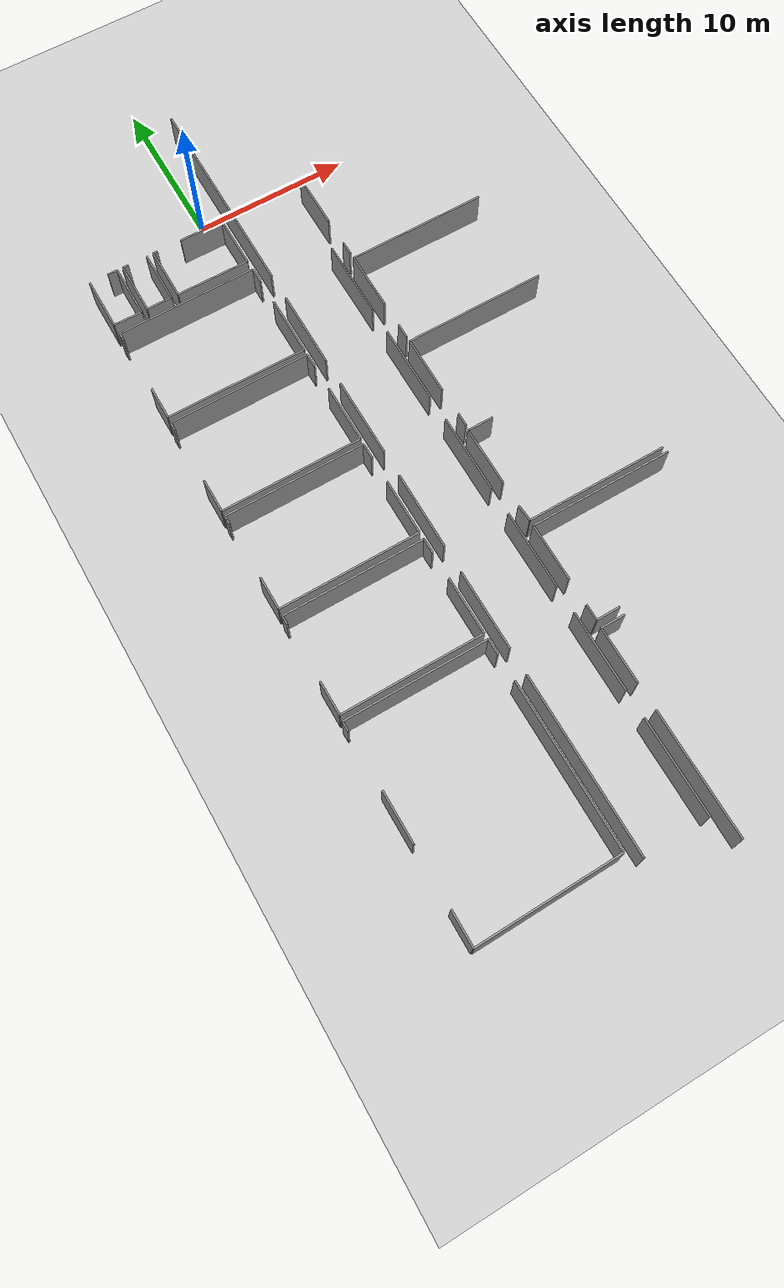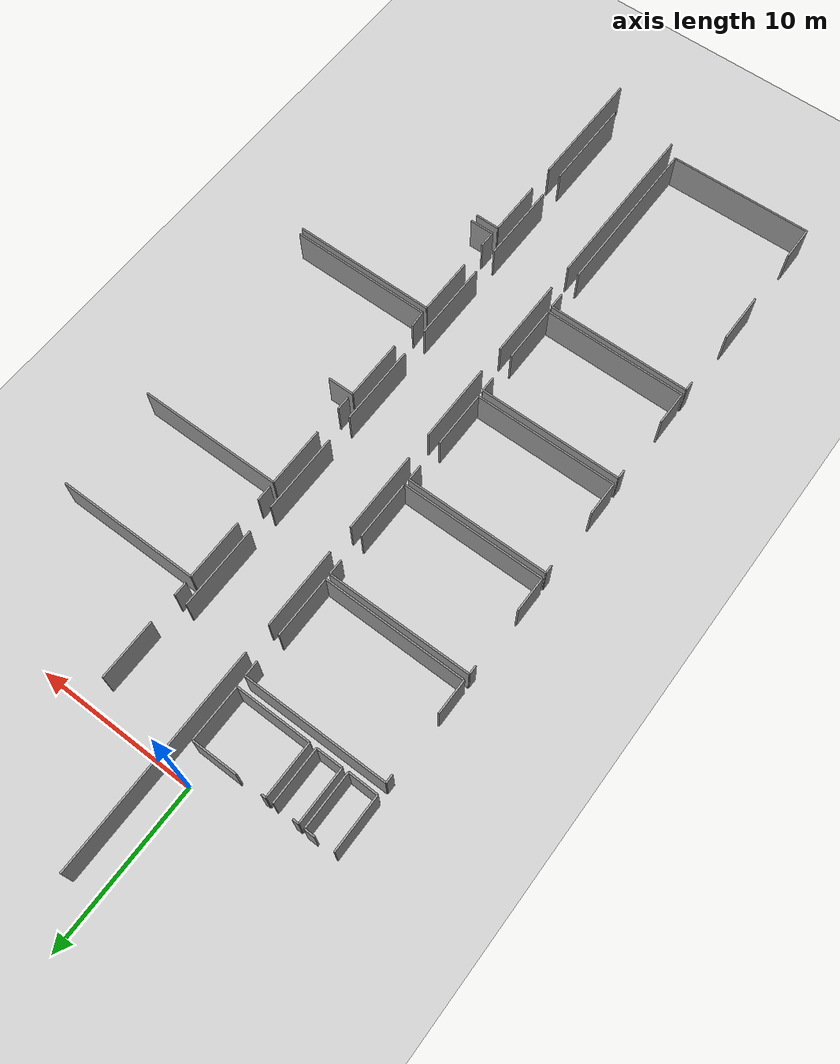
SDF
<sdf version="1.6">
 <world name="default">
  <model name="ground_plane">
   <static>1</static>
   <link name="link">
    <collision name="collision">
     <geometry><plane><normal>0 0 1</normal><size>100 100</size></plane></geometry>
     <surface><friction><ode><mu>100</mu><mu2>50</mu2></ode></friction></surface>
    </collision>
    <visual name="visual">
     <cast_shadows>0</cast_shadows>
     <geometry><plane><normal>0 0 1</normal><size>100 100</size></plane></geometry>
     <material>
      <script><uri>file://media/materials/scripts/gazebo.material</uri><name>Gazebo/Grey</name></script>
     </material>
    </visual>
   </link>
  </model>
  <model name="0510035741_A_40_1_104">
   <static>1</static>
   <link name="Wall_330">
    <collision name="Wall_330_Collision">
     <geometry><box><size>11.21379722 0.1 2.5</size></box></geometry>
     <pose>5.60689860999 0 1.25 0 0 0</pose>
    </collision>
    <visual name="Wall_330_Visual">
     <pose>5.60689860999 0 1.25 0 0 0</pose>
     <geometry><box><size>11.21379722 0.1 2.5</size></box></geometry>
     <material>
      <script><uri>file://media/materials/scripts/gazebo.material</uri><name>Gazebo/Grey</name></script>
      <ambient>1 1 1 1</ambient>
     </material>
    </visual>
    <pose>95.5269524578 -96.6239736857 0 0 0 1.57079632679</pose>
   </link>
   <link name="Wall_331">
    <collision name="Wall_331_Collision">
     <geometry><box><size>5.1264596999 0.1 2.5</size></box></geometry>
     <pose>2.56322984995 0 1.25 0 0 0</pose>
    </collision>
    <visual name="Wall_331_Visual">
     <pose>2.56322984995 0 1.25 0 0 0</pose>
     <geometry><box><size>5.1264596999 0.1 2.5</size></box></geometry>
     <material>
      <script><uri>file://media/materials/scripts/gazebo.material</uri><name>Gazebo/Grey</name></script>
      <ambient>1 1 1 1</ambient>
     </material>
    </visual>
    <pose>95.5269524578 -83.7548656663 0 0 0 1.57079632679</pose>
   </link>
   <link name="Wall_332">
    <collision name="Wall_332_Collision">
     <geometry><box><size>5.02689213302 0.1 2.5</size></box></geometry>
     <pose>2.51344606651 0 1.25 0 0 0</pose>
    </collision>
    <visual name="Wall_332_Visual">
     <pose>2.51344606651 0 1.25 0 0 0</pose>
     <geometry><box><size>5.02689213302 0.1 2.5</size></box></geometry>
     <material>
      <script><uri>file://media/materials/scripts/gazebo.material</uri><name>Gazebo/Grey</name></script>
      <ambient>1 1 1 1</ambient>
     </material>
    </visual>
    <pose>95.5269524578 -76.8725116046 0 0 0 1.57079632679</pose>
   </link>
   <link name="Wall_333">
    <collision name="Wall_333_Collision">
     <geometry><box><size>5.14373162477 0.1 2.5</size></box></geometry>
     <pose>2.57186581238 0 1.25 0 0 0</pose>
    </collision>
    <visual name="Wall_333_Visual">
     <pose>2.57186581238 0 1.25 0 0 0</pose>
     <geometry><box><size>5.14373162477 0.1 2.5</size></box></geometry>
     <material>
      <script><uri>file://media/materials/scripts/gazebo.material</uri><name>Gazebo/Grey</name></script>
      <ambient>1 1 1 1</ambient>
     </material>
    </visual>
    <pose>95.5269524578 -70.1420488821 0 0 0 1.57079632679</pose>
   </link>
   <link name="Wall_334">
    <collision name="Wall_334_Collision">
     <geometry><box><size>5.05787999822 0.1 2.5</size></box></geometry>
     <pose>2.52893999911 0 1.25 0 0 0</pose>
    </collision>
    <visual name="Wall_334_Visual">
     <pose>2.52893999911 0 1.25 0 0 0</pose>
     <geometry><box><size>5.05787999822 0.1 2.5</size></box></geometry>
     <material>
      <script><uri>file://media/materials/scripts/gazebo.material</uri><name>Gazebo/Grey</name></script>
      <ambient>1 1 1 1</ambient>
     </material>
    </visual>
    <pose>95.5269524578 -63.2779827408 0 0 0 1.57079632679</pose>
   </link>
   <link name="Wall_335">
    <collision name="Wall_335_Collision">
     <geometry><box><size>13.6443126472 0.1 2.5</size></box></geometry>
     <pose>6.82215632362 0 1.25 0 0 0</pose>
    </collision>
    <visual name="Wall_335_Visual">
     <pose>6.82215632362 0 1.25 0 0 0</pose>
     <geometry><box><size>13.6443126472 0.1 2.5</size></box></geometry>
     <material>
      <script><uri>file://media/materials/scripts/gazebo.material</uri><name>Gazebo/Grey</name></script>
      <ambient>1 1 1 1</ambient>
     </material>
    </visual>
    <pose>95.5269524578 -56.4311885243 0 0 0 1.57079632679</pose>
   </link>
   <link name="Wall_338">
    <collision name="Wall_338_Collision">
     <geometry><box><size>5.13077768112 0.1 2.5</size></box></geometry>
     <pose>2.56538884056 0 1.25 0 0 0</pose>
    </collision>
    <visual name="Wall_338_Visual">
     <pose>2.56538884056 0 1.25 0 0 0</pose>
     <geometry><box><size>5.13077768112 0.1 2.5</size></box></geometry>
     <material>
      <script><uri>file://media/materials/scripts/gazebo.material</uri><name>Gazebo/Grey</name></script>
      <ambient>1 1 1 1</ambient>
     </material>
    </visual>
    <pose>99.6620544701 -56.5205961354 0 0 0 -1.57079632679</pose>
   </link>
   <link name="Wall_339">
    <collision name="Wall_339_Collision">
     <geometry><box><size>5.02917812308 0.1 2.5</size></box></geometry>
     <pose>2.51458906154 0 1.25 0 0 0</pose>
    </collision>
    <visual name="Wall_339_Visual">
     <pose>2.51458906154 0 1.25 0 0 0</pose>
     <geometry><box><size>5.02917812308 0.1 2.5</size></box></geometry>
     <material>
      <script><uri>file://media/materials/scripts/gazebo.material</uri><name>Gazebo/Grey</name></script>
      <ambient>1 1 1 1</ambient>
     </material>
    </visual>
    <pose>99.6620544701 -63.3531664137 0 0 0 -1.57079632679</pose>
   </link>
   <link name="Wall_340">
    <collision name="Wall_340_Collision">
     <geometry><box><size>5.0799779021 0.1 2.5</size></box></geometry>
     <pose>2.53998895105 0 1.25 0 0 0</pose>
    </collision>
    <visual name="Wall_340_Visual">
     <pose>2.53998895105 0 1.25 0 0 0</pose>
     <geometry><box><size>5.0799779021 0.1 2.5</size></box></geometry>
     <material>
      <script><uri>file://media/materials/scripts/gazebo.material</uri><name>Gazebo/Grey</name></script>
      <ambient>1 1 1 1</ambient>
     </material>
    </visual>
    <pose>99.6620544701 -70.1095370235 0 0 0 -1.57079632679</pose>
   </link>
   <link name="Wall_341">
    <collision name="Wall_341_Collision">
     <geometry><box><size>5.05787999822 0.1 2.5</size></box></geometry>
     <pose>2.52893999911 0 1.25 0 0 0</pose>
    </collision>
    <visual name="Wall_341_Visual">
     <pose>2.52893999911 0 1.25 0 0 0</pose>
     <geometry><box><size>5.05787999822 0.1 2.5</size></box></geometry>
     <material>
      <script><uri>file://media/materials/scripts/gazebo.material</uri><name>Gazebo/Grey</name></script>
      <ambient>1 1 1 1</ambient>
     </material>
    </visual>
    <pose>99.6620544701 -76.9718251726 0 0 0 -1.57079632679</pose>
   </link>
   <link name="Wall_342">
    <collision name="Wall_342_Collision">
     <geometry><box><size>5.07337393082 0.1 2.5</size></box></geometry>
     <pose>2.53668696541 0 1.25 0 0 0</pose>
    </collision>
    <visual name="Wall_342_Visual">
     <pose>2.53668696541 0 1.25 0 0 0</pose>
     <geometry><box><size>5.07337393082 0.1 2.5</size></box></geometry>
     <material>
      <script><uri>file://media/materials/scripts/gazebo.material</uri><name>Gazebo/Grey</name></script>
      <ambient>1 1 1 1</ambient>
     </material>
    </visual>
    <pose>99.6620544701 -83.7746775802 0 0 0 -1.57079632679</pose>
   </link>
   <link name="Wall_343">
    <collision name="Wall_343_Collision">
     <geometry><box><size>6.04949168471 0.1 2.5</size></box></geometry>
     <pose>3.02474584236 0 1.25 0 0 0</pose>
    </collision>
    <visual name="Wall_343_Visual">
     <pose>3.02474584236 0 1.25 0 0 0</pose>
     <geometry><box><size>6.04949168471 0.1 2.5</size></box></geometry>
     <material>
      <script><uri>file://media/materials/scripts/gazebo.material</uri><name>Gazebo/Grey</name></script>
      <ambient>1 1 1 1</ambient>
     </material>
    </visual>
    <pose>99.6620544701 -90.5564480795 0 0 0 -1.57079632679</pose>
   </link>
   <link name="Wall_344">
    <collision name="Wall_344_Collision">
     <geometry><box><size>3.38377328059 0.1 2.5</size></box></geometry>
     <pose>1.69188664029 0 1.25 0 0 0</pose>
    </collision>
    <visual name="Wall_344_Visual">
     <pose>1.69188664029 0 1.25 0 0 0</pose>
     <geometry><box><size>3.38377328059 0.1 2.5</size></box></geometry>
     <material>
      <script><uri>file://media/materials/scripts/gazebo.material</uri><name>Gazebo/Grey</name></script>
      <ambient>1 1 1 1</ambient>
     </material>
    </visual>
    <pose>90.0052704771 -54.7680037592 0 0 0 1.57079632679</pose>
   </link>
   <link name="Wall_345">
    <collision name="Wall_345_Collision">
     <geometry><box><size>0.290320737105 0.1 2.5</size></box></geometry>
     <pose>0.145160368552 0 1.25 0 0 0</pose>
    </collision>
    <visual name="Wall_345_Visual">
     <pose>0.145160368552 0 1.25 0 0 0</pose>
     <geometry><box><size>0.290320737105 0.1 2.5</size></box></geometry>
     <material>
      <script><uri>file://media/materials/scripts/gazebo.material</uri><name>Gazebo/Grey</name></script>
      <ambient>1 1 1 1</ambient>
     </material>
    </visual>
    <pose>90.0052704771 -51.3842304786 0 0 0 0.0</pose>
   </link>
   <link name="Wall_346">
    <collision name="Wall_346_Collision">
     <geometry><box><size>2.84656561744 0.1 2.5</size></box></geometry>
     <pose>1.42328280872 0 1.25 0 0 0</pose>
    </collision>
    <visual name="Wall_346_Visual">
     <pose>1.42328280872 0 1.25 0 0 0</pose>
     <geometry><box><size>2.84656561744 0.1 2.5</size></box></geometry>
     <material>
      <script><uri>file://media/materials/scripts/gazebo.material</uri><name>Gazebo/Grey</name></script>
      <ambient>1 1 1 1</ambient>
     </material>
    </visual>
    <pose>91.8785123285 -51.3842304786 0 0 0 0.0</pose>
   </link>
   <link name="Wall_347">
    <collision name="Wall_347_Collision">
     <geometry><box><size>3.39825121761 0.1 2.5</size></box></geometry>
     <pose>1.6991256088 0 1.25 0 0 0</pose>
    </collision>
    <visual name="Wall_347_Visual">
     <pose>1.6991256088 0 1.25 0 0 0</pose>
     <geometry><box><size>3.39825121761 0.1 2.5</size></box></geometry>
     <material>
      <script><uri>file://media/materials/scripts/gazebo.material</uri><name>Gazebo/Grey</name></script>
      <ambient>1 1 1 1</ambient>
     </material>
    </visual>
    <pose>94.7250779459 -51.3842304786 0 0 0 -1.57079632679</pose>
   </link>
   <link name="Wall_348">
    <collision name="Wall_348_Collision">
     <geometry><box><size>4.71982967421 0.1 2.5</size></box></geometry>
     <pose>2.35991483711 0 1.25 0 0 0</pose>
    </collision>
    <visual name="Wall_348_Visual">
     <pose>2.35991483711 0 1.25 0 0 0</pose>
     <geometry><box><size>4.71982967421 0.1 2.5</size></box></geometry>
     <material>
      <script><uri>file://media/materials/scripts/gazebo.material</uri><name>Gazebo/Grey</name></script>
      <ambient>1 1 1 1</ambient>
     </material>
    </visual>
    <pose>94.7250779459 -54.7824816962 0 0 0 3.13852517855</pose>
   </link>
   <link name="Wall_349">
    <collision name="Wall_349_Collision">
     <geometry><box><size>3.38275728501 0.1 2.5</size></box></geometry>
     <pose>1.6913786425 0 1.25 0 0 0</pose>
    </collision>
    <visual name="Wall_349_Visual">
     <pose>1.6913786425 0 1.25 0 0 0</pose>
     <geometry><box><size>3.38275728501 0.1 2.5</size></box></geometry>
     <material>
      <script><uri>file://media/materials/scripts/gazebo.material</uri><name>Gazebo/Grey</name></script>
      <ambient>1 1 1 1</ambient>
     </material>
    </visual>
    <pose>87.9377194709 -54.7542878188 0 0 0 1.57079632679</pose>
   </link>
   <link name="Wall_350">
    <collision name="Wall_350_Collision">
     <geometry><box><size>0.371346384643 0.1 2.5</size></box></geometry>
     <pose>0.185673192322 0 1.25 0 0 0</pose>
    </collision>
    <visual name="Wall_350_Visual">
     <pose>0.185673192322 0 1.25 0 0 0</pose>
     <geometry><box><size>0.371346384643 0.1 2.5</size></box></geometry>
     <material>
      <script><uri>file://media/materials/scripts/gazebo.material</uri><name>Gazebo/Grey</name></script>
      <ambient>1 1 1 1</ambient>
     </material>
    </visual>
    <pose>87.9377194709 -51.3715305338 0 0 0 0.0</pose>
   </link>
   <link name="Wall_351">
    <collision name="Wall_351_Collision">
     <geometry><box><size>3.38199528832 0.1 2.5</size></box></geometry>
     <pose>1.69099764416 0 1.25 0 0 0</pose>
    </collision>
    <visual name="Wall_351_Visual">
     <pose>1.69099764416 0 1.25 0 0 0</pose>
     <geometry><box><size>3.38199528832 0.1 2.5</size></box></geometry>
     <material>
      <script><uri>file://media/materials/scripts/gazebo.material</uri><name>Gazebo/Grey</name></script>
      <ambient>1 1 1 1</ambient>
     </material>
    </visual>
    <pose>89.5549304361 -51.3715305338 0 0 0 -1.57079632679</pose>
   </link>
   <link name="Wall_352">
    <collision name="Wall_352_Collision">
     <geometry><box><size>1.61721114465 0.1 2.5</size></box></geometry>
     <pose>0.808605572325 0 1.25 0 0 0</pose>
    </collision>
    <visual name="Wall_352_Visual">
     <pose>0.808605572325 0 1.25 0 0 0</pose>
     <geometry><box><size>1.61721114465 0.1 2.5</size></box></geometry>
     <material>
      <script><uri>file://media/materials/scripts/gazebo.material</uri><name>Gazebo/Grey</name></script>
      <ambient>1 1 1 1</ambient>
     </material>
    </visual>
    <pose>89.5549304361 -54.7535258222 0 0 0 -3.14112147411</pose>
   </link>
   <link name="Wall_353">
    <collision name="Wall_353_Collision">
     <geometry><box><size>3.38783726291 0.1 2.5</size></box></geometry>
     <pose>1.69391863145 0 1.25 0 0 0</pose>
    </collision>
    <visual name="Wall_353_Visual">
     <pose>1.69391863145 0 1.25 0 0 0</pose>
     <geometry><box><size>3.38783726291 0.1 2.5</size></box></geometry>
     <material>
      <script><uri>file://media/materials/scripts/gazebo.material</uri><name>Gazebo/Grey</name></script>
      <ambient>1 1 1 1</ambient>
     </material>
    </visual>
    <pose>85.7309770702 -54.7461598542 0 0 0 1.57079632679</pose>
   </link>
   <link name="Wall_354">
    <collision name="Wall_354_Collision">
     <geometry><box><size>0.639823216769 0.1 2.5</size></box></geometry>
     <pose>0.319911608385 0 1.25 0 0 0</pose>
    </collision>
    <visual name="Wall_354_Visual">
     <pose>0.319911608385 0 1.25 0 0 0</pose>
     <geometry><box><size>0.639823216769 0.1 2.5</size></box></geometry>
     <material>
      <script><uri>file://media/materials/scripts/gazebo.material</uri><name>Gazebo/Grey</name></script>
      <ambient>1 1 1 1</ambient>
     </material>
    </visual>
    <pose>86.9245178783 -51.3583225913 0 0 0 0.0</pose>
   </link>
   <link name="Wall_355">
    <collision name="Wall_355_Collision">
     <geometry><box><size>3.4195871248 0.1 2.5</size></box></geometry>
     <pose>1.7097935624 0 1.25 0 0 0</pose>
    </collision>
    <visual name="Wall_355_Visual">
     <pose>1.7097935624 0 1.25 0 0 0</pose>
     <geometry><box><size>3.4195871248 0.1 2.5</size></box></geometry>
     <material>
      <script><uri>file://media/materials/scripts/gazebo.material</uri><name>Gazebo/Grey</name></script>
      <ambient>1 1 1 1</ambient>
     </material>
    </visual>
    <pose>87.5643410951 -51.3583225913 0 0 0 -1.57079632679</pose>
   </link>
   <link name="Wall_356">
    <collision name="Wall_356_Collision">
     <geometry><box><size>1.8336389234 0.1 2.5</size></box></geometry>
     <pose>0.9168194617 0 1.25 0 0 0</pose>
    </collision>
    <visual name="Wall_356_Visual">
     <pose>0.9168194617 0 1.25 0 0 0</pose>
     <geometry><box><size>1.8336389234 0.1 2.5</size></box></geometry>
     <material>
      <script><uri>file://media/materials/scripts/gazebo.material</uri><name>Gazebo/Grey</name></script>
      <ambient>1 1 1 1</ambient>
     </material>
    </visual>
    <pose>87.5643410951 -54.7779097161 0 0 0 3.12427656795</pose>
   </link>
   <link name="Wall_380">
    <collision name="Wall_380_Collision">
     <geometry><box><size>0.878582178168 0.1 2.5</size></box></geometry>
     <pose>0.439291089084 0 1.25 0 0 0</pose>
    </collision>
    <visual name="Wall_380_Visual">
     <pose>0.439291089084 0 1.25 0 0 0</pose>
     <geometry><box><size>0.878582178168 0.1 2.5</size></box></geometry>
     <material>
      <script><uri>file://media/materials/scripts/gazebo.material</uri><name>Gazebo/Grey</name></script>
      <ambient>1 1 1 1</ambient>
     </material>
    </visual>
    <pose>100.464690979 -57.4327061677 0 0 0 1.57079632679</pose>
   </link>
   <link name="Wall_381">
    <collision name="Wall_381_Collision">
     <geometry><box><size>3.68857195471 0.1 2.5</size></box></geometry>
     <pose>1.84428597736 0 1.25 0 0 0</pose>
    </collision>
    <visual name="Wall_381_Visual">
     <pose>1.84428597736 0 1.25 0 0 0</pose>
     <geometry><box><size>3.68857195471 0.1 2.5</size></box></geometry>
     <material>
      <script><uri>file://media/materials/scripts/gazebo.material</uri><name>Gazebo/Grey</name></script>
      <ambient>1 1 1 1</ambient>
     </material>
    </visual>
    <pose>100.464690979 -54.7525098266 0 0 0 1.57079632679</pose>
   </link>
   <link name="Wall_386">
    <collision name="Wall_386_Collision">
     <geometry><box><size>0.99313567986 0.1 2.5</size></box></geometry>
     <pose>0.49656783993 0 1.25 0 0 0</pose>
    </collision>
    <visual name="Wall_386_Visual">
     <pose>0.49656783993 0 1.25 0 0 0</pose>
     <geometry><box><size>0.99313567986 0.1 2.5</size></box></geometry>
     <material>
      <script><uri>file://media/materials/scripts/gazebo.material</uri><name>Gazebo/Grey</name></script>
      <ambient>1 1 1 1</ambient>
     </material>
    </visual>
    <pose>100.481962903 -64.2866123532 0 0 0 1.57079632679</pose>
   </link>
   <link name="Wall_387">
    <collision name="Wall_387_Collision">
     <geometry><box><size>3.77696357021 0.1 2.5</size></box></geometry>
     <pose>1.8884817851 0 1.25 0 0 0</pose>
    </collision>
    <visual name="Wall_387_Visual">
     <pose>1.8884817851 0 1.25 0 0 0</pose>
     <geometry><box><size>3.77696357021 0.1 2.5</size></box></geometry>
     <material>
      <script><uri>file://media/materials/scripts/gazebo.material</uri><name>Gazebo/Grey</name></script>
      <ambient>1 1 1 1</ambient>
     </material>
    </visual>
    <pose>100.481962903 -61.6216559458 0 0 0 1.57079632679</pose>
   </link>
   <link name="Wall_388">
    <collision name="Wall_388_Collision">
     <geometry><box><size>8.98216292759 0.1 2.5</size></box></geometry>
     <pose>4.4910814638 0 1.25 0 0 0</pose>
    </collision>
    <visual name="Wall_388_Visual">
     <pose>4.4910814638 0 1.25 0 0 0</pose>
     <geometry><box><size>8.98216292759 0.1 2.5</size></box></geometry>
     <material>
      <script><uri>file://media/materials/scripts/gazebo.material</uri><name>Gazebo/Grey</name></script>
      <ambient>1 1 1 1</ambient>
     </material>
    </visual>
    <pose>100.481962903 -57.8446923756 0 0 0 0.0</pose>
   </link>
   <link name="Wall_392">
    <collision name="Wall_392_Collision">
     <geometry><box><size>0.88518614944 0.1 2.5</size></box></geometry>
     <pose>0.44259307472 0 1.25 0 0 0</pose>
    </collision>
    <visual name="Wall_392_Visual">
     <pose>0.44259307472 0 1.25 0 0 0</pose>
     <geometry><box><size>0.88518614944 0.1 2.5</size></box></geometry>
     <material>
      <script><uri>file://media/materials/scripts/gazebo.material</uri><name>Gazebo/Grey</name></script>
      <ambient>1 1 1 1</ambient>
     </material>
    </visual>
    <pose>100.485264889 -71.0607628857 0 0 0 1.57079632679</pose>
   </link>
   <link name="Wall_393">
    <collision name="Wall_393_Collision">
     <geometry><box><size>3.78356754148 0.1 2.5</size></box></geometry>
     <pose>1.89178377074 0 1.25 0 0 0</pose>
    </collision>
    <visual name="Wall_393_Visual">
     <pose>1.89178377074 0 1.25 0 0 0</pose>
     <geometry><box><size>3.78356754148 0.1 2.5</size></box></geometry>
     <material>
      <script><uri>file://media/materials/scripts/gazebo.material</uri><name>Gazebo/Grey</name></script>
      <ambient>1 1 1 1</ambient>
     </material>
    </visual>
    <pose>100.485264889 -68.3744705711 0 0 0 1.57079632679</pose>
   </link>
   <link name="Wall_394">
    <collision name="Wall_394_Collision">
     <geometry><box><size>9.11525834863 0.1 2.5</size></box></geometry>
     <pose>4.55762917431 0 1.25 0 0 0</pose>
    </collision>
    <visual name="Wall_394_Visual">
     <pose>4.55762917431 0 1.25 0 0 0</pose>
     <geometry><box><size>9.11525834863 0.1 2.5</size></box></geometry>
     <material>
      <script><uri>file://media/materials/scripts/gazebo.material</uri><name>Gazebo/Grey</name></script>
      <ambient>1 1 1 1</ambient>
     </material>
    </visual>
    <pose>100.485264889 -64.5909030296 0 0 0 0.0</pose>
   </link>
   <link name="Wall_399">
    <collision name="Wall_399_Collision">
     <geometry><box><size>9.05556860828 0.1 2.5</size></box></geometry>
     <pose>4.52778430414 0 1.25 0 0 0</pose>
    </collision>
    <visual name="Wall_399_Visual">
     <pose>4.52778430414 0 1.25 0 0 0</pose>
     <geometry><box><size>9.05556860828 0.1 2.5</size></box></geometry>
     <material>
      <script><uri>file://media/materials/scripts/gazebo.material</uri><name>Gazebo/Grey</name></script>
      <ambient>1 1 1 1</ambient>
     </material>
    </visual>
    <pose>100.496948838 -77.9436249452 0 0 0 0.0</pose>
   </link>
   <link name="Wall_403">
    <collision name="Wall_403_Collision">
     <geometry><box><size>1.67004273531 0.1 2.5</size></box></geometry>
     <pose>0.835021367657 0 1.25 0 0 0</pose>
    </collision>
    <visual name="Wall_403_Visual">
     <pose>0.835021367657 0 1.25 0 0 0</pose>
     <geometry><box><size>1.67004273531 0.1 2.5</size></box></geometry>
     <material>
      <script><uri>file://media/materials/scripts/gazebo.material</uri><name>Gazebo/Grey</name></script>
      <ambient>1 1 1 1</ambient>
     </material>
    </visual>
    <pose>102.087743918 -71.3838494803 0 0 0 3.14159265359</pose>
   </link>
   <link name="Wall_404">
    <collision name="Wall_404_Collision">
     <geometry><box><size>3.84325728183 0.1 2.5</size></box></geometry>
     <pose>1.92162864092 0 1.25 0 0 0</pose>
    </collision>
    <visual name="Wall_404_Visual">
     <pose>1.92162864092 0 1.25 0 0 0</pose>
     <geometry><box><size>3.84325728183 0.1 2.5</size></box></geometry>
     <material>
      <script><uri>file://media/materials/scripts/gazebo.material</uri><name>Gazebo/Grey</name></script>
      <ambient>1 1 1 1</ambient>
     </material>
    </visual>
    <pose>100.417701183 -71.3838494803 0 0 0 -1.57079632679</pose>
   </link>
   <link name="Wall_405">
    <collision name="Wall_405_Collision">
     <geometry><box><size>1.07049469848 0.1 2.5</size></box></geometry>
     <pose>0.535247349242 0 1.25 0 0 0</pose>
    </collision>
    <visual name="Wall_405_Visual">
     <pose>0.535247349242 0 1.25 0 0 0</pose>
     <geometry><box><size>1.07049469848 0.1 2.5</size></box></geometry>
     <material>
      <script><uri>file://media/materials/scripts/gazebo.material</uri><name>Gazebo/Grey</name></script>
      <ambient>1 1 1 1</ambient>
     </material>
    </visual>
    <pose>100.417701183 -76.8760675891 0 0 0 -1.4966995397</pose>
   </link>
   <link name="Wall_406">
    <collision name="Wall_406_Collision">
     <geometry><box><size>1.03555349534 0.1 2.5</size></box></geometry>
     <pose>0.517776747671 0 1.25 0 0 0</pose>
    </collision>
    <visual name="Wall_406_Visual">
     <pose>0.517776747671 0 1.25 0 0 0</pose>
     <geometry><box><size>1.03555349534 0.1 2.5</size></box></geometry>
     <material>
      <script><uri>file://media/materials/scripts/gazebo.material</uri><name>Gazebo/Grey</name></script>
      <ambient>1 1 1 1</ambient>
     </material>
    </visual>
    <pose>100.4827249 -84.7607012909 0 0 0 1.57079632679</pose>
   </link>
   <link name="Wall_407">
    <collision name="Wall_407_Collision">
     <geometry><box><size>3.68831795582 0.1 2.5</size></box></geometry>
     <pose>1.84415897791 0 1.25 0 0 0</pose>
    </collision>
    <visual name="Wall_407_Visual">
     <pose>1.84415897791 0 1.25 0 0 0</pose>
     <geometry><box><size>3.68831795582 0.1 2.5</size></box></geometry>
     <material>
      <script><uri>file://media/materials/scripts/gazebo.material</uri><name>Gazebo/Grey</name></script>
      <ambient>1 1 1 1</ambient>
     </material>
    </visual>
    <pose>100.4827249 -82.0076072669 0 0 0 1.57079632679</pose>
   </link>
   <link name="Wall_408">
    <collision name="Wall_408_Collision">
     <geometry><box><size>9.18028206577 0.1 2.5</size></box></geometry>
     <pose>4.59014103289 0 1.25 0 0 0</pose>
    </collision>
    <visual name="Wall_408_Visual">
     <pose>4.59014103289 0 1.25 0 0 0</pose>
     <geometry><box><size>9.18028206577 0.1 2.5</size></box></geometry>
     <material>
      <script><uri>file://media/materials/scripts/gazebo.material</uri><name>Gazebo/Grey</name></script>
      <ambient>1 1 1 1</ambient>
     </material>
    </visual>
    <pose>100.4827249 -78.3192893111 0 0 0 0.0</pose>
   </link>
   <link name="Wall_412">
    <collision name="Wall_412_Collision">
     <geometry><box><size>1.51237631119 0.1 2.5</size></box></geometry>
     <pose>0.756188155593 0 1.25 0 0 0</pose>
    </collision>
    <visual name="Wall_412_Visual">
     <pose>0.756188155593 0 1.25 0 0 0</pose>
     <geometry><box><size>1.51237631119 0.1 2.5</size></box></geometry>
     <material>
      <script><uri>file://media/materials/scripts/gazebo.material</uri><name>Gazebo/Grey</name></script>
      <ambient>1 1 1 1</ambient>
     </material>
    </visual>
    <pose>101.995034322 -84.7464773528 0 0 0 -3.1321874892</pose>
   </link>
   <link name="Wall_413">
    <collision name="Wall_413_Collision">
     <geometry><box><size>7.87421974714 0.1 2.5</size></box></geometry>
     <pose>3.93710987357 0 1.25 0 0 0</pose>
    </collision>
    <visual name="Wall_413_Visual">
     <pose>3.93710987357 0 1.25 0 0 0</pose>
     <geometry><box><size>7.87421974714 0.1 2.5</size></box></geometry>
     <material>
      <script><uri>file://media/materials/scripts/gazebo.material</uri><name>Gazebo/Grey</name></script>
      <ambient>1 1 1 1</ambient>
     </material>
    </visual>
    <pose>100.439291089 -98.393329989 0 0 0 1.57079632679</pose>
   </link>
   <link name="Wall_414">
    <collision name="Wall_414_Collision">
     <geometry><box><size>3.57274845854 0.1 2.5</size></box></geometry>
     <pose>1.78637422927 0 1.25 0 0 0</pose>
    </collision>
    <visual name="Wall_414_Visual">
     <pose>1.78637422927 0 1.25 0 0 0</pose>
     <geometry><box><size>3.57274845854 0.1 2.5</size></box></geometry>
     <material>
      <script><uri>file://media/materials/scripts/gazebo.material</uri><name>Gazebo/Grey</name></script>
      <ambient>1 1 1 1</ambient>
     </material>
    </visual>
    <pose>100.439291089 -88.8292555927 0 0 0 1.57079632679</pose>
   </link>
   <link name="Wall_415">
    <collision name="Wall_415_Collision">
     <geometry><box><size>1.53643931649 0.1 2.5</size></box></geometry>
     <pose>0.768219658244 0 1.25 0 0 0</pose>
    </collision>
    <visual name="Wall_415_Visual">
     <pose>0.768219658244 0 1.25 0 0 0</pose>
     <geometry><box><size>1.53643931649 0.1 2.5</size></box></geometry>
     <material>
      <script><uri>file://media/materials/scripts/gazebo.material</uri><name>Gazebo/Grey</name></script>
      <ambient>1 1 1 1</ambient>
     </material>
    </visual>
    <pose>100.439291089 -85.2565071342 0 0 0 0.0</pose>
   </link>
   <link name="Wall_421">
    <collision name="Wall_421_Collision">
     <geometry><box><size>2.17016655978 0.1 2.5</size></box></geometry>
     <pose>1.08508327989 0 1.25 0 0 0</pose>
    </collision>
    <visual name="Wall_421_Visual">
     <pose>1.08508327989 0 1.25 0 0 0</pose>
     <geometry><box><size>2.17016655978 0.1 2.5</size></box></geometry>
     <material>
      <script><uri>file://media/materials/scripts/gazebo.material</uri><name>Gazebo/Grey</name></script>
      <ambient>1 1 1 1</ambient>
     </material>
    </visual>
    <pose>85.7083711686 -95.9925324325 0 0 0 1.57079632679</pose>
   </link>
   <link name="Wall_422">
    <collision name="Wall_422_Collision">
     <geometry><box><size>3.20749804738 0.1 2.5</size></box></geometry>
     <pose>1.60374902369 0 1.25 0 0 0</pose>
    </collision>
    <visual name="Wall_422_Visual">
     <pose>1.60374902369 0 1.25 0 0 0</pose>
     <geometry><box><size>3.20749804738 0.1 2.5</size></box></geometry>
     <material>
      <script><uri>file://media/materials/scripts/gazebo.material</uri><name>Gazebo/Grey</name></script>
      <ambient>1 1 1 1</ambient>
     </material>
    </visual>
    <pose>85.7083711686 -90.1348099136 0 0 0 1.57079632679</pose>
   </link>
   <link name="Wall_423">
    <collision name="Wall_423_Collision">
     <geometry><box><size>0.614677326154 0.1 2.5</size></box></geometry>
     <pose>0.307338663077 0 1.25 0 0 0</pose>
    </collision>
    <visual name="Wall_423_Visual">
     <pose>0.307338663077 0 1.25 0 0 0</pose>
     <geometry><box><size>0.614677326154 0.1 2.5</size></box></geometry>
     <material>
      <script><uri>file://media/materials/scripts/gazebo.material</uri><name>Gazebo/Grey</name></script>
      <ambient>1 1 1 1</ambient>
     </material>
    </visual>
    <pose>85.7083711686 -83.3167175723 0 0 0 1.57079632679</pose>
   </link>
   <link name="Wall_424">
    <collision name="Wall_424_Collision">
     <geometry><box><size>9.08452448232 0.1 2.5</size></box></geometry>
     <pose>4.54226224116 0 1.25 0 0 0</pose>
    </collision>
    <visual name="Wall_424_Visual">
     <pose>4.54226224116 0 1.25 0 0 0</pose>
     <geometry><box><size>9.08452448232 0.1 2.5</size></box></geometry>
     <material>
      <script><uri>file://media/materials/scripts/gazebo.material</uri><name>Gazebo/Grey</name></script>
      <ambient>1 1 1 1</ambient>
     </material>
    </visual>
    <pose>85.7083711686 -82.7020402461 0 0 0 0.0</pose>
   </link>
   <link name="Wall_425">
    <collision name="Wall_425_Collision">
     <geometry><box><size>0.998723655552 0.1 2.5</size></box></geometry>
     <pose>0.499361827776 0 1.25 0 0 0</pose>
    </collision>
    <visual name="Wall_425_Visual">
     <pose>0.499361827776 0 1.25 0 0 0</pose>
     <geometry><box><size>0.998723655552 0.1 2.5</size></box></geometry>
     <material>
      <script><uri>file://media/materials/scripts/gazebo.material</uri><name>Gazebo/Grey</name></script>
      <ambient>1 1 1 1</ambient>
     </material>
    </visual>
    <pose>94.7928956509 -82.7020402461 0 0 0 -1.57079632679</pose>
   </link>
   <link name="Wall_426">
    <collision name="Wall_426_Collision">
     <geometry><box><size>10.4650084772 0.1 2.5</size></box></geometry>
     <pose>5.23250423861 0 1.25 0 0 0</pose>
    </collision>
    <visual name="Wall_426_Visual">
     <pose>5.23250423861 0 1.25 0 0 0</pose>
     <geometry><box><size>10.4650084772 0.1 2.5</size></box></geometry>
     <material>
      <script><uri>file://media/materials/scripts/gazebo.material</uri><name>Gazebo/Grey</name></script>
      <ambient>1 1 1 1</ambient>
     </material>
    </visual>
    <pose>94.7928956509 -85.3870625663 0 0 0 -1.57079632679</pose>
   </link>
   <link name="Wall_427">
    <collision name="Wall_427_Collision">
     <geometry><box><size>9.08561029715 0.1 2.5</size></box></geometry>
     <pose>4.54280514857 0 1.25 0 0 0</pose>
    </collision>
    <visual name="Wall_427_Visual">
     <pose>4.54280514857 0 1.25 0 0 0</pose>
     <geometry><box><size>9.08561029715 0.1 2.5</size></box></geometry>
     <material>
      <script><uri>file://media/materials/scripts/gazebo.material</uri><name>Gazebo/Grey</name></script>
      <ambient>1 1 1 1</ambient>
     </material>
    </visual>
    <pose>94.7928956509 -95.8520710435 0 0 0 -3.12613227392</pose>
   </link>
   <link name="Wall_428">
    <collision name="Wall_428_Collision">
     <geometry><box><size>2.14121068573 0.1 2.5</size></box></geometry>
     <pose>1.07060534287 0 1.25 0 0 0</pose>
    </collision>
    <visual name="Wall_428_Visual">
     <pose>1.07060534287 0 1.25 0 0 0</pose>
     <geometry><box><size>2.14121068573 0.1 2.5</size></box></geometry>
     <material>
      <script><uri>file://media/materials/scripts/gazebo.material</uri><name>Gazebo/Grey</name></script>
      <ambient>1 1 1 1</ambient>
     </material>
    </visual>
    <pose>85.7429150183 -82.3266298792 0 0 0 1.57079632679</pose>
   </link>
   <link name="Wall_429">
    <collision name="Wall_429_Collision">
     <geometry><box><size>0.571243515091 0.1 2.5</size></box></geometry>
     <pose>0.285621757545 0 1.25 0 0 0</pose>
    </collision>
    <visual name="Wall_429_Visual">
     <pose>0.285621757545 0 1.25 0 0 0</pose>
     <geometry><box><size>0.571243515091 0.1 2.5</size></box></geometry>
     <material>
      <script><uri>file://media/materials/scripts/gazebo.material</uri><name>Gazebo/Grey</name></script>
      <ambient>1 1 1 1</ambient>
     </material>
    </visual>
    <pose>85.7429150183 -76.4958312431 0 0 0 1.57079632679</pose>
   </link>
   <link name="Wall_430">
    <collision name="Wall_430_Collision">
     <geometry><box><size>9.01543678285 0.1 2.5</size></box></geometry>
     <pose>4.50771839143 0 1.25 0 0 0</pose>
    </collision>
    <visual name="Wall_430_Visual">
     <pose>4.50771839143 0 1.25 0 0 0</pose>
     <geometry><box><size>9.01543678285 0.1 2.5</size></box></geometry>
     <material>
      <script><uri>file://media/materials/scripts/gazebo.material</uri><name>Gazebo/Grey</name></script>
      <ambient>1 1 1 1</ambient>
     </material>
    </visual>
    <pose>85.7429150183 -75.924587728 0 0 0 0.0</pose>
   </link>
   <link name="Wall_431">
    <collision name="Wall_431_Collision">
     <geometry><box><size>0.955543843384 0.1 2.5</size></box></geometry>
     <pose>0.477771921692 0 1.25 0 0 0</pose>
    </collision>
    <visual name="Wall_431_Visual">
     <pose>0.477771921692 0 1.25 0 0 0</pose>
     <geometry><box><size>0.955543843384 0.1 2.5</size></box></geometry>
     <material>
      <script><uri>file://media/materials/scripts/gazebo.material</uri><name>Gazebo/Grey</name></script>
      <ambient>1 1 1 1</ambient>
     </material>
    </visual>
    <pose>94.7583518012 -75.924587728 0 0 0 -1.57079632679</pose>
   </link>
   <link name="Wall_432">
    <collision name="Wall_432_Collision">
     <geometry><box><size>3.70736787295 0.1 2.5</size></box></geometry>
     <pose>1.85368393647 0 1.25 0 0 0</pose>
    </collision>
    <visual name="Wall_432_Visual">
     <pose>1.85368393647 0 1.25 0 0 0</pose>
     <geometry><box><size>3.70736787295 0.1 2.5</size></box></geometry>
     <material>
      <script><uri>file://media/materials/scripts/gazebo.material</uri><name>Gazebo/Grey</name></script>
      <ambient>1 1 1 1</ambient>
     </material>
    </visual>
    <pose>94.7583518012 -78.6096100482 0 0 0 -1.57079632679</pose>
   </link>
   <link name="Wall_433">
    <collision name="Wall_433_Collision">
     <geometry><box><size>9.01544194956 0.1 2.5</size></box></geometry>
     <pose>4.50772097478 0 1.25 0 0 0</pose>
    </collision>
    <visual name="Wall_433_Visual">
     <pose>4.50772097478 0 1.25 0 0 0</pose>
     <geometry><box><size>9.01544194956 0.1 2.5</size></box></geometry>
     <material>
      <script><uri>file://media/materials/scripts/gazebo.material</uri><name>Gazebo/Grey</name></script>
      <ambient>1 1 1 1</ambient>
     </material>
    </visual>
    <pose>94.7583518012 -82.3169779211 0 0 0 -3.14052205052</pose>
   </link>
   <link name="Wall_434">
    <collision name="Wall_434_Collision">
     <geometry><box><size>2.15213263822 0.1 2.5</size></box></geometry>
     <pose>1.07606631911 0 1.25 0 0 0</pose>
    </collision>
    <visual name="Wall_434_Visual">
     <pose>1.07606631911 0 1.25 0 0 0</pose>
     <geometry><box><size>2.15213263822 0.1 2.5</size></box></geometry>
     <material>
      <script><uri>file://media/materials/scripts/gazebo.material</uri><name>Gazebo/Grey</name></script>
      <ambient>1 1 1 1</ambient>
     </material>
    </visual>
    <pose>85.7538369708 -75.4854236384 0 0 0 1.57079632679</pose>
   </link>
   <link name="Wall_435">
    <collision name="Wall_435_Collision">
     <geometry><box><size>0.534667674196 0.1 2.5</size></box></geometry>
     <pose>0.267333837098 0 1.25 0 0 0</pose>
    </collision>
    <visual name="Wall_435_Visual">
     <pose>0.267333837098 0 1.25 0 0 0</pose>
     <geometry><box><size>0.534667674196 0.1 2.5</size></box></geometry>
     <material>
      <script><uri>file://media/materials/scripts/gazebo.material</uri><name>Gazebo/Grey</name></script>
      <ambient>1 1 1 1</ambient>
     </material>
    </visual>
    <pose>85.7538369708 -69.6358290841 0 0 0 1.57079632679</pose>
   </link>
   <link name="Wall_436">
    <collision name="Wall_436_Collision">
     <geometry><box><size>8.9816549298 0.1 2.5</size></box></geometry>
     <pose>4.4908274649 0 1.25 0 0 0</pose>
    </collision>
    <visual name="Wall_436_Visual">
     <pose>4.4908274649 0 1.25 0 0 0</pose>
     <geometry><box><size>8.9816549298 0.1 2.5</size></box></geometry>
     <material>
      <script><uri>file://media/materials/scripts/gazebo.material</uri><name>Gazebo/Grey</name></script>
      <ambient>1 1 1 1</ambient>
     </material>
    </visual>
    <pose>85.7538369708 -69.1011614099 0 0 0 0.0</pose>
   </link>
   <link name="Wall_437">
    <collision name="Wall_437_Collision">
     <geometry><box><size>1.02183755501 0.1 2.5</size></box></geometry>
     <pose>0.510918777503 0 1.25 0 0 0</pose>
    </collision>
    <visual name="Wall_437_Visual">
     <pose>0.510918777503 0 1.25 0 0 0</pose>
     <geometry><box><size>1.02183755501 0.1 2.5</size></box></geometry>
     <material>
      <script><uri>file://media/materials/scripts/gazebo.material</uri><name>Gazebo/Grey</name></script>
      <ambient>1 1 1 1</ambient>
     </material>
    </visual>
    <pose>94.7354919006 -69.1011614099 0 0 0 -1.57079632679</pose>
   </link>
   <link name="Wall_438">
    <collision name="Wall_438_Collision">
     <geometry><box><size>3.63066020663 0.1 2.5</size></box></geometry>
     <pose>1.81533010331 0 1.25 0 0 0</pose>
    </collision>
    <visual name="Wall_438_Visual">
     <pose>1.81533010331 0 1.25 0 0 0</pose>
     <geometry><box><size>3.63066020663 0.1 2.5</size></box></geometry>
     <material>
      <script><uri>file://media/materials/scripts/gazebo.material</uri><name>Gazebo/Grey</name></script>
      <ambient>1 1 1 1</ambient>
     </material>
    </visual>
    <pose>94.7354919006 -71.8319035312 0 0 0 -1.57079632679</pose>
   </link>
   <link name="Wall_439">
    <collision name="Wall_439_Collision">
     <geometry><box><size>8.981684021 0.1 2.5</size></box></geometry>
     <pose>4.4908420105 0 1.25 0 0 0</pose>
    </collision>
    <visual name="Wall_439_Visual">
     <pose>4.4908420105 0 1.25 0 0 0</pose>
     <geometry><box><size>8.981684021 0.1 2.5</size></box></geometry>
     <material>
      <script><uri>file://media/materials/scripts/gazebo.material</uri><name>Gazebo/Grey</name></script>
      <ambient>1 1 1 1</ambient>
     </material>
    </visual>
    <pose>94.7354919006 -75.4625637378 0 0 0 -3.1390474822</pose>
   </link>
   <link name="Wall_440">
    <collision name="Wall_440_Collision">
     <geometry><box><size>2.19277246144 0.1 2.5</size></box></geometry>
     <pose>1.09638623072 0 1.25 0 0 0</pose>
    </collision>
    <visual name="Wall_440_Visual">
     <pose>1.09638623072 0 1.25 0 0 0</pose>
     <geometry><box><size>2.19277246144 0.1 2.5</size></box></geometry>
     <material>
      <script><uri>file://media/materials/scripts/gazebo.material</uri><name>Gazebo/Grey</name></script>
      <ambient>1 1 1 1</ambient>
     </material>
    </visual>
    <pose>85.7355490504 -68.7384509877 0 0 0 1.57079632679</pose>
   </link>
   <link name="Wall_441">
    <collision name="Wall_441_Collision">
     <geometry><box><size>0.551685600168 0.1 2.5</size></box></geometry>
     <pose>0.275842800084 0 1.25 0 0 0</pose>
    </collision>
    <visual name="Wall_441_Visual">
     <pose>0.275842800084 0 1.25 0 0 0</pose>
     <geometry><box><size>0.551685600168 0.1 2.5</size></box></geometry>
     <material>
      <script><uri>file://media/materials/scripts/gazebo.material</uri><name>Gazebo/Grey</name></script>
      <ambient>1 1 1 1</ambient>
     </material>
    </visual>
    <pose>85.7355490504 -62.8568525727 0 0 0 1.57079632679</pose>
   </link>
   <link name="Wall_442">
    <collision name="Wall_442_Collision">
     <geometry><box><size>9.03296270661 0.1 2.5</size></box></geometry>
     <pose>4.51648135331 0 1.25 0 0 0</pose>
    </collision>
    <visual name="Wall_442_Visual">
     <pose>4.51648135331 0 1.25 0 0 0</pose>
     <geometry><box><size>9.03296270661 0.1 2.5</size></box></geometry>
     <material>
      <script><uri>file://media/materials/scripts/gazebo.material</uri><name>Gazebo/Grey</name></script>
      <ambient>1 1 1 1</ambient>
     </material>
    </visual>
    <pose>85.7355490504 -62.3051669725 0 0 0 0.0</pose>
   </link>
   <link name="Wall_443">
    <collision name="Wall_443_Collision">
     <geometry><box><size>0.943859894209 0.1 2.5</size></box></geometry>
     <pose>0.471929947105 0 1.25 0 0 0</pose>
    </collision>
    <visual name="Wall_443_Visual">
     <pose>0.471929947105 0 1.25 0 0 0</pose>
     <geometry><box><size>0.943859894209 0.1 2.5</size></box></geometry>
     <material>
      <script><uri>file://media/materials/scripts/gazebo.material</uri><name>Gazebo/Grey</name></script>
      <ambient>1 1 1 1</ambient>
     </material>
    </visual>
    <pose>94.768511757 -62.3051669725 0 0 0 -1.57079632679</pose>
   </link>
   <link name="Wall_444">
    <collision name="Wall_444_Collision">
     <geometry><box><size>3.78356754148 0.1 2.5</size></box></geometry>
     <pose>1.89178377074 0 1.25 0 0 0</pose>
    </collision>
    <visual name="Wall_444_Visual">
     <pose>1.89178377074 0 1.25 0 0 0</pose>
     <geometry><box><size>3.78356754148 0.1 2.5</size></box></geometry>
     <material>
      <script><uri>file://media/materials/scripts/gazebo.material</uri><name>Gazebo/Grey</name></script>
      <ambient>1 1 1 1</ambient>
     </material>
    </visual>
    <pose>94.768511757 -64.9556454429 0 0 0 -1.57079632679</pose>
   </link>
   <link name="Wall_445">
    <collision name="Wall_445_Collision">
     <geometry><box><size>9.03296273875 0.1 2.5</size></box></geometry>
     <pose>4.51648136938 0 1.25 0 0 0</pose>
    </collision>
    <visual name="Wall_445_Visual">
     <pose>4.51648136938 0 1.25 0 0 0</pose>
     <geometry><box><size>9.03296273875 0.1 2.5</size></box></geometry>
     <material>
      <script><uri>file://media/materials/scripts/gazebo.material</uri><name>Gazebo/Grey</name></script>
      <ambient>1 1 1 1</ambient>
     </material>
    </visual>
    <pose>94.768511757 -68.7392129844 0 0 0 3.14150829625</pose>
   </link>
   <link name="Wall_446">
    <collision name="Wall_446_Collision">
     <geometry><box><size>2.14933865038 0.1 2.5</size></box></geometry>
     <pose>1.07466932519 0 1.25 0 0 0</pose>
    </collision>
    <visual name="Wall_446_Visual">
     <pose>1.07466932519 0 1.25 0 0 0</pose>
     <geometry><box><size>2.14933865038 0.1 2.5</size></box></geometry>
     <material>
      <script><uri>file://media/materials/scripts/gazebo.material</uri><name>Gazebo/Grey</name></script>
      <ambient>1 1 1 1</ambient>
     </material>
    </visual>
    <pose>85.7645049244 -61.8985147415 0 0 0 1.57079632679</pose>
   </link>
   <link name="Wall_447">
    <collision name="Wall_447_Collision">
     <geometry><box><size>0.522729726126 0.1 2.5</size></box></geometry>
     <pose>0.261364863063 0 1.25 0 0 0</pose>
    </collision>
    <visual name="Wall_447_Visual">
     <pose>0.261364863063 0 1.25 0 0 0</pose>
     <geometry><box><size>0.522729726126 0.1 2.5</size></box></geometry>
     <material>
      <script><uri>file://media/materials/scripts/gazebo.material</uri><name>Gazebo/Grey</name></script>
      <ambient>1 1 1 1</ambient>
     </material>
    </visual>
    <pose>85.7645049244 -55.9732285165 0 0 0 1.57079632679</pose>
   </link>
   <link name="Wall_448">
    <collision name="Wall_448_Collision">
     <geometry><box><size>9.00400683257 0.1 2.5</size></box></geometry>
     <pose>4.50200341629 0 1.25 0 0 0</pose>
    </collision>
    <visual name="Wall_448_Visual">
     <pose>4.50200341629 0 1.25 0 0 0</pose>
     <geometry><box><size>9.00400683257 0.1 2.5</size></box></geometry>
     <material>
      <script><uri>file://media/materials/scripts/gazebo.material</uri><name>Gazebo/Grey</name></script>
      <ambient>1 1 1 1</ambient>
     </material>
    </visual>
    <pose>85.7645049244 -55.4504987903 0 0 0 0.0</pose>
   </link>
   <link name="Wall_449">
    <collision name="Wall_449_Collision">
     <geometry><box><size>0.958591830126 0.1 2.5</size></box></geometry>
     <pose>0.479295915063 0 1.25 0 0 0</pose>
    </collision>
    <visual name="Wall_449_Visual">
     <pose>0.479295915063 0 1.25 0 0 0</pose>
     <geometry><box><size>0.958591830126 0.1 2.5</size></box></geometry>
     <material>
      <script><uri>file://media/materials/scripts/gazebo.material</uri><name>Gazebo/Grey</name></script>
      <ambient>1 1 1 1</ambient>
     </material>
    </visual>
    <pose>94.768511757 -55.4504987903 0 0 0 -1.57079632679</pose>
   </link>
   <link name="Wall_450">
    <collision name="Wall_450_Collision">
     <geometry><box><size>3.84122529067 0.1 2.5</size></box></geometry>
     <pose>1.92061264533 0 1.25 0 0 0</pose>
    </collision>
    <visual name="Wall_450_Visual">
     <pose>1.92061264533 0 1.25 0 0 0</pose>
     <geometry><box><size>3.84122529067 0.1 2.5</size></box></geometry>
     <material>
      <script><uri>file://media/materials/scripts/gazebo.material</uri><name>Gazebo/Grey</name></script>
      <ambient>1 1 1 1</ambient>
     </material>
    </visual>
    <pose>94.768511757 -58.1174871889 0 0 0 -1.57079632679</pose>
   </link>
   <link name="Wall_451">
    <collision name="Wall_451_Collision">
     <geometry><box><size>9.00420806116 0.1 2.5</size></box></geometry>
     <pose>4.50210403058 0 1.25 0 0 0</pose>
    </collision>
    <visual name="Wall_451_Visual">
     <pose>4.50210403058 0 1.25 0 0 0</pose>
     <geometry><box><size>9.00420806116 0.1 2.5</size></box></geometry>
     <material>
      <script><uri>file://media/materials/scripts/gazebo.material</uri><name>Gazebo/Grey</name></script>
      <ambient>1 1 1 1</ambient>
     </material>
    </visual>
    <pose>94.768511757 -61.9587124796 0 0 0 3.13490709211</pose>
   </link>
   <pose>-93.95 49.6727497285 0 0 0 0</pose>
  </model>
 </world>
</sdf>
